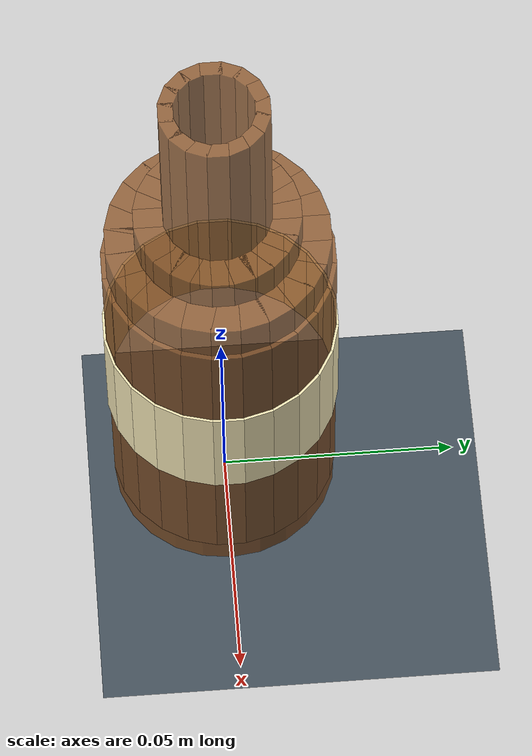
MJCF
<mujoco model="duet2_bottle">
  <compiler angle="radian" autolimits="true" />
  <option timestep=".005" integrator="implicitfast" cone="elliptic" iterations="30" />
  <asset>
    <material name="base_motor_holder_so101_v1_material" rgba="1 0.82 0.12 1" />
    <material name="base_so101_v2_material" rgba="1 0.82 0.12 1" />
    <material name="sts3215_03a_v1_material" rgba="0.1 0.1 0.1 1" />
    <material name="waveshare_mounting_plate_so101_v2_material" rgba="1 0.82 0.12 1" />
    <material name="motor_holder_so101_base_v1_material" rgba="1 0.82 0.12 1" />
    <material name="rotation_pitch_so101_v1_material" rgba="1 0.82 0.12 1" />
    <material name="upper_arm_so101_v1_material" rgba="1 0.82 0.12 1" />
    <material name="under_arm_so101_v1_material" rgba="1 0.82 0.12 1" />
    <material name="motor_holder_so101_wrist_v1_material" rgba="1 0.82 0.12 1" />
    <material name="sts3215_03a_no_horn_v1_material" rgba="0.1 0.1 0.1 1.0" />
    <material name="wrist_roll_pitch_so101_v2_material" rgba="1 0.82 0.12 1" />
    <material name="wrist_roll_follower_so101_v1_material" rgba="1 0.82 0.12 1" />
    <material name="moving_jaw_so101_v1_material" rgba="1 0.82 0.12 1" />
    <texture name="sky" type="skybox" builtin="gradient" rgb1="0.15 0.21 0.29" rgb2="0.04 0.07 0.12" width="512" height="3072" />
    <texture name="floor_tex" type="2d" builtin="checker" width="512" height="512" rgb1="0.18 0.22 0.28" rgb2="0.20 0.24 0.30" />
    <material name="floor_mat" texture="floor_tex" texrepeat="8 8" reflectance="0.05" />
    <material name="table_mat" rgba=".69 .53 .37 1" specular="0.25" shininess="0.3" />
    <material name="edge_mat" rgba="0.07 0.12 0.17 1" specular="0.45" />
    <material name="tube_mat" rgba="0.71 0.88 0.94 0.78" specular="0.6" shininess="0.8" />
    <material name="ceramic" rgba=".95 .95 .90 1" specular=".3" shininess=".65" />
    <material name="plate_blue" rgba=".33 .51 .76 1" specular=".35" shininess=".65" />
    <material name="plate_gold" rgba=".81 .56 .28 1" specular=".35" shininess=".65" />
    <material name="mug_teal" rgba=".06 .53 .49 1" specular=".4" shininess=".65" />
    <material name="clear_glass" rgba=".66 .87 .92 .30" specular=".75" shininess=".65" />
    <material name="glass_rim" rgba=".62 .84 .89 .8" specular=".6" shininess=".65" />
    <material name="amber_glass" rgba=".55 .32 .13 .78" specular=".6" shininess=".65" />
    <material name="bottle_label" rgba=".96 .91 .72 1" specular=".1" shininess=".65" />
    <material name="steel" rgba=".72 .78 .83 1" specular=".85" shininess=".65" />
    <material name="drawer_wood" rgba=".37 .21 .12 1" specular=".2" shininess=".65" />
    <material name="drawer_lining" rgba=".20 .28 .27 1" specular=".1" shininess=".65" />
  </asset>
  <worldbody>
    <light pos="0 -.3 2" dir="0 0 -1" />
    <geom name="inspection_floor" type="plane" size=".4 .4 .05" pos="0 0 0.0" rgba=".27 .32 .36 1" />
    <body name="bottle" pos="0 0 0.001" euler="0 0 0">
      <freejoint name="bottle_free" />
      <inertial pos="0 0 0.07" mass="0.08" diaginertia="0.00014602667 0.00014602667 3.072e-05" />
      <geom name="bottle_base" type="cylinder" size="0.024 0.007" pos="0 0 0.007" mass="0" friction="0.8 0.005 0.0001" condim="4" solref=".012 1" material="amber_glass" />
      <geom name="bottle_wall_0" type="box" size="0.002 0.0031596599 0.0395" pos="0.022 0 0.0455" mass="0" friction="0.8 0.005 0.0001" condim="4" solref=".012 1" euler="0 0 0" material="amber_glass" />
      <geom name="bottle_wall_1" type="box" size="0.002 0.0031596599 0.0395" pos="0.021250368 0.005694019 0.0455" mass="0" friction="0.8 0.005 0.0001" condim="4" solref=".012 1" euler="0 0 0.26179939" material="amber_glass" />
      <geom name="bottle_wall_2" type="box" size="0.002 0.0031596599 0.0395" pos="0.019052559 0.011 0.0455" mass="0" friction="0.8 0.005 0.0001" condim="4" solref=".012 1" euler="0 0 0.52359878" material="amber_glass" />
      <geom name="bottle_wall_3" type="box" size="0.002 0.0031596599 0.0395" pos="0.015556349 0.015556349 0.0455" mass="0" friction="0.8 0.005 0.0001" condim="4" solref=".012 1" euler="0 0 0.78539816" material="amber_glass" />
      <geom name="bottle_wall_4" type="box" size="0.002 0.0031596599 0.0395" pos="0.011 0.019052559 0.0455" mass="0" friction="0.8 0.005 0.0001" condim="4" solref=".012 1" euler="0 0 1.0471976" material="amber_glass" />
      <geom name="bottle_wall_5" type="box" size="0.002 0.0031596599 0.0395" pos="0.005694019 0.021250368 0.0455" mass="0" friction="0.8 0.005 0.0001" condim="4" solref=".012 1" euler="0 0 1.3089969" material="amber_glass" />
      <geom name="bottle_wall_6" type="box" size="0.002 0.0031596599 0.0395" pos="1.3471115e-18 0.022 0.0455" mass="0" friction="0.8 0.005 0.0001" condim="4" solref=".012 1" euler="0 0 1.5707963" material="amber_glass" />
      <geom name="bottle_wall_7" type="box" size="0.002 0.0031596599 0.0395" pos="-0.005694019 0.021250368 0.0455" mass="0" friction="0.8 0.005 0.0001" condim="4" solref=".012 1" euler="0 0 1.8325957" material="amber_glass" />
      <geom name="bottle_wall_8" type="box" size="0.002 0.0031596599 0.0395" pos="-0.011 0.019052559 0.0455" mass="0" friction="0.8 0.005 0.0001" condim="4" solref=".012 1" euler="0 0 2.0943951" material="amber_glass" />
      <geom name="bottle_wall_9" type="box" size="0.002 0.0031596599 0.0395" pos="-0.015556349 0.015556349 0.0455" mass="0" friction="0.8 0.005 0.0001" condim="4" solref=".012 1" euler="0 0 2.3561945" material="amber_glass" />
      <geom name="bottle_wall_10" type="box" size="0.002 0.0031596599 0.0395" pos="-0.019052559 0.011 0.0455" mass="0" friction="0.8 0.005 0.0001" condim="4" solref=".012 1" euler="0 0 2.6179939" material="amber_glass" />
      <geom name="bottle_wall_11" type="box" size="0.002 0.0031596599 0.0395" pos="-0.021250368 0.005694019 0.0455" mass="0" friction="0.8 0.005 0.0001" condim="4" solref=".012 1" euler="0 0 2.8797933" material="amber_glass" />
      <geom name="bottle_wall_12" type="box" size="0.002 0.0031596599 0.0395" pos="-0.022 2.694223e-18 0.0455" mass="0" friction="0.8 0.005 0.0001" condim="4" solref=".012 1" euler="0 0 3.1415927" material="amber_glass" />
      <geom name="bottle_wall_13" type="box" size="0.002 0.0031596599 0.0395" pos="-0.021250368 -0.005694019 0.0455" mass="0" friction="0.8 0.005 0.0001" condim="4" solref=".012 1" euler="0 0 3.403392" material="amber_glass" />
      <geom name="bottle_wall_14" type="box" size="0.002 0.0031596599 0.0395" pos="-0.019052559 -0.011 0.0455" mass="0" friction="0.8 0.005 0.0001" condim="4" solref=".012 1" euler="0 0 3.6651914" material="amber_glass" />
      <geom name="bottle_wall_15" type="box" size="0.002 0.0031596599 0.0395" pos="-0.015556349 -0.015556349 0.0455" mass="0" friction="0.8 0.005 0.0001" condim="4" solref=".012 1" euler="0 0 3.9269908" material="amber_glass" />
      <geom name="bottle_wall_16" type="box" size="0.002 0.0031596599 0.0395" pos="-0.011 -0.019052559 0.0455" mass="0" friction="0.8 0.005 0.0001" condim="4" solref=".012 1" euler="0 0 4.1887902" material="amber_glass" />
      <geom name="bottle_wall_17" type="box" size="0.002 0.0031596599 0.0395" pos="-0.005694019 -0.021250368 0.0455" mass="0" friction="0.8 0.005 0.0001" condim="4" solref=".012 1" euler="0 0 4.4505896" material="amber_glass" />
      <geom name="bottle_wall_18" type="box" size="0.002 0.0031596599 0.0395" pos="-4.0413344e-18 -0.022 0.0455" mass="0" friction="0.8 0.005 0.0001" condim="4" solref=".012 1" euler="0 0 4.712389" material="amber_glass" />
      <geom name="bottle_wall_19" type="box" size="0.002 0.0031596599 0.0395" pos="0.005694019 -0.021250368 0.0455" mass="0" friction="0.8 0.005 0.0001" condim="4" solref=".012 1" euler="0 0 4.9741884" material="amber_glass" />
      <geom name="bottle_wall_20" type="box" size="0.002 0.0031596599 0.0395" pos="0.011 -0.019052559 0.0455" mass="0" friction="0.8 0.005 0.0001" condim="4" solref=".012 1" euler="0 0 5.2359878" material="amber_glass" />
      <geom name="bottle_wall_21" type="box" size="0.002 0.0031596599 0.0395" pos="0.015556349 -0.015556349 0.0455" mass="0" friction="0.8 0.005 0.0001" condim="4" solref=".012 1" euler="0 0 5.4977871" material="amber_glass" />
      <geom name="bottle_wall_22" type="box" size="0.002 0.0031596599 0.0395" pos="0.019052559 -0.011 0.0455" mass="0" friction="0.8 0.005 0.0001" condim="4" solref=".012 1" euler="0 0 5.7595865" material="amber_glass" />
      <geom name="bottle_wall_23" type="box" size="0.002 0.0031596599 0.0395" pos="0.021250368 -0.005694019 0.0455" mass="0" friction="0.8 0.005 0.0001" condim="4" solref=".012 1" euler="0 0 6.0213859" material="amber_glass" />
      <geom name="bottle_shoulder_lower_0" type="box" size="0.004 0.0030280074 0.005" pos="0.019 0 0.089" mass="0" friction="0.8 0.005 0.0001" condim="4" solref=".012 1" euler="0 0 0" material="amber_glass" />
      <geom name="bottle_shoulder_lower_1" type="box" size="0.004 0.0030280074 0.005" pos="0.018352591 0.0049175619 0.089" mass="0" friction="0.8 0.005 0.0001" condim="4" solref=".012 1" euler="0 0 0.26179939" material="amber_glass" />
      <geom name="bottle_shoulder_lower_2" type="box" size="0.004 0.0030280074 0.005" pos="0.016454483 0.0095 0.089" mass="0" friction="0.8 0.005 0.0001" condim="4" solref=".012 1" euler="0 0 0.52359878" material="amber_glass" />
      <geom name="bottle_shoulder_lower_3" type="box" size="0.004 0.0030280074 0.005" pos="0.013435029 0.013435029 0.089" mass="0" friction="0.8 0.005 0.0001" condim="4" solref=".012 1" euler="0 0 0.78539816" material="amber_glass" />
      <geom name="bottle_shoulder_lower_4" type="box" size="0.004 0.0030280074 0.005" pos="0.0095 0.016454483 0.089" mass="0" friction="0.8 0.005 0.0001" condim="4" solref=".012 1" euler="0 0 1.0471976" material="amber_glass" />
      <geom name="bottle_shoulder_lower_5" type="box" size="0.004 0.0030280074 0.005" pos="0.0049175619 0.018352591 0.089" mass="0" friction="0.8 0.005 0.0001" condim="4" solref=".012 1" euler="0 0 1.3089969" material="amber_glass" />
      <geom name="bottle_shoulder_lower_6" type="box" size="0.004 0.0030280074 0.005" pos="1.1634145e-18 0.019 0.089" mass="0" friction="0.8 0.005 0.0001" condim="4" solref=".012 1" euler="0 0 1.5707963" material="amber_glass" />
      <geom name="bottle_shoulder_lower_7" type="box" size="0.004 0.0030280074 0.005" pos="-0.0049175619 0.018352591 0.089" mass="0" friction="0.8 0.005 0.0001" condim="4" solref=".012 1" euler="0 0 1.8325957" material="amber_glass" />
      <geom name="bottle_shoulder_lower_8" type="box" size="0.004 0.0030280074 0.005" pos="-0.0095 0.016454483 0.089" mass="0" friction="0.8 0.005 0.0001" condim="4" solref=".012 1" euler="0 0 2.0943951" material="amber_glass" />
      <geom name="bottle_shoulder_lower_9" type="box" size="0.004 0.0030280074 0.005" pos="-0.013435029 0.013435029 0.089" mass="0" friction="0.8 0.005 0.0001" condim="4" solref=".012 1" euler="0 0 2.3561945" material="amber_glass" />
      <geom name="bottle_shoulder_lower_10" type="box" size="0.004 0.0030280074 0.005" pos="-0.016454483 0.0095 0.089" mass="0" friction="0.8 0.005 0.0001" condim="4" solref=".012 1" euler="0 0 2.6179939" material="amber_glass" />
      <geom name="bottle_shoulder_lower_11" type="box" size="0.004 0.0030280074 0.005" pos="-0.018352591 0.0049175619 0.089" mass="0" friction="0.8 0.005 0.0001" condim="4" solref=".012 1" euler="0 0 2.8797933" material="amber_glass" />
      <geom name="bottle_shoulder_lower_12" type="box" size="0.004 0.0030280074 0.005" pos="-0.019 2.3268289e-18 0.089" mass="0" friction="0.8 0.005 0.0001" condim="4" solref=".012 1" euler="0 0 3.1415927" material="amber_glass" />
      <geom name="bottle_shoulder_lower_13" type="box" size="0.004 0.0030280074 0.005" pos="-0.018352591 -0.0049175619 0.089" mass="0" friction="0.8 0.005 0.0001" condim="4" solref=".012 1" euler="0 0 3.403392" material="amber_glass" />
      <geom name="bottle_shoulder_lower_14" type="box" size="0.004 0.0030280074 0.005" pos="-0.016454483 -0.0095 0.089" mass="0" friction="0.8 0.005 0.0001" condim="4" solref=".012 1" euler="0 0 3.6651914" material="amber_glass" />
      <geom name="bottle_shoulder_lower_15" type="box" size="0.004 0.0030280074 0.005" pos="-0.013435029 -0.013435029 0.089" mass="0" friction="0.8 0.005 0.0001" condim="4" solref=".012 1" euler="0 0 3.9269908" material="amber_glass" />
      <geom name="bottle_shoulder_lower_16" type="box" size="0.004 0.0030280074 0.005" pos="-0.0095 -0.016454483 0.089" mass="0" friction="0.8 0.005 0.0001" condim="4" solref=".012 1" euler="0 0 4.1887902" material="amber_glass" />
      <geom name="bottle_shoulder_lower_17" type="box" size="0.004 0.0030280074 0.005" pos="-0.0049175619 -0.018352591 0.089" mass="0" friction="0.8 0.005 0.0001" condim="4" solref=".012 1" euler="0 0 4.4505896" material="amber_glass" />
      <geom name="bottle_shoulder_lower_18" type="box" size="0.004 0.0030280074 0.005" pos="-3.4902434e-18 -0.019 0.089" mass="0" friction="0.8 0.005 0.0001" condim="4" solref=".012 1" euler="0 0 4.712389" material="amber_glass" />
      <geom name="bottle_shoulder_lower_19" type="box" size="0.004 0.0030280074 0.005" pos="0.0049175619 -0.018352591 0.089" mass="0" friction="0.8 0.005 0.0001" condim="4" solref=".012 1" euler="0 0 4.9741884" material="amber_glass" />
      <geom name="bottle_shoulder_lower_20" type="box" size="0.004 0.0030280074 0.005" pos="0.0095 -0.016454483 0.089" mass="0" friction="0.8 0.005 0.0001" condim="4" solref=".012 1" euler="0 0 5.2359878" material="amber_glass" />
      <geom name="bottle_shoulder_lower_21" type="box" size="0.004 0.0030280074 0.005" pos="0.013435029 -0.013435029 0.089" mass="0" friction="0.8 0.005 0.0001" condim="4" solref=".012 1" euler="0 0 5.4977871" material="amber_glass" />
      <geom name="bottle_shoulder_lower_22" type="box" size="0.004 0.0030280074 0.005" pos="0.016454483 -0.0095 0.089" mass="0" friction="0.8 0.005 0.0001" condim="4" solref=".012 1" euler="0 0 5.7595865" material="amber_glass" />
      <geom name="bottle_shoulder_lower_23" type="box" size="0.004 0.0030280074 0.005" pos="0.018352591 -0.0049175619 0.089" mass="0" friction="0.8 0.005 0.0001" condim="4" solref=".012 1" euler="0 0 6.0213859" material="amber_glass" />
      <geom name="bottle_shoulder_upper_0" type="box" size="0.003 0.0022380925 0.005" pos="0.014 0 0.097" mass="0" friction="0.8 0.005 0.0001" condim="4" solref=".012 1" euler="0 0 0" material="amber_glass" />
      <geom name="bottle_shoulder_upper_1" type="box" size="0.003 0.0022380925 0.005" pos="0.013522962 0.0036234666 0.097" mass="0" friction="0.8 0.005 0.0001" condim="4" solref=".012 1" euler="0 0 0.26179939" material="amber_glass" />
      <geom name="bottle_shoulder_upper_2" type="box" size="0.003 0.0022380925 0.005" pos="0.012124356 0.007 0.097" mass="0" friction="0.8 0.005 0.0001" condim="4" solref=".012 1" euler="0 0 0.52359878" material="amber_glass" />
      <geom name="bottle_shoulder_upper_3" type="box" size="0.003 0.0022380925 0.005" pos="0.0098994949 0.0098994949 0.097" mass="0" friction="0.8 0.005 0.0001" condim="4" solref=".012 1" euler="0 0 0.78539816" material="amber_glass" />
      <geom name="bottle_shoulder_upper_4" type="box" size="0.003 0.0022380925 0.005" pos="0.007 0.012124356 0.097" mass="0" friction="0.8 0.005 0.0001" condim="4" solref=".012 1" euler="0 0 1.0471976" material="amber_glass" />
      <geom name="bottle_shoulder_upper_5" type="box" size="0.003 0.0022380925 0.005" pos="0.0036234666 0.013522962 0.097" mass="0" friction="0.8 0.005 0.0001" condim="4" solref=".012 1" euler="0 0 1.3089969" material="amber_glass" />
      <geom name="bottle_shoulder_upper_6" type="box" size="0.003 0.0022380925 0.005" pos="8.5725276e-19 0.014 0.097" mass="0" friction="0.8 0.005 0.0001" condim="4" solref=".012 1" euler="0 0 1.5707963" material="amber_glass" />
      <geom name="bottle_shoulder_upper_7" type="box" size="0.003 0.0022380925 0.005" pos="-0.0036234666 0.013522962 0.097" mass="0" friction="0.8 0.005 0.0001" condim="4" solref=".012 1" euler="0 0 1.8325957" material="amber_glass" />
      <geom name="bottle_shoulder_upper_8" type="box" size="0.003 0.0022380925 0.005" pos="-0.007 0.012124356 0.097" mass="0" friction="0.8 0.005 0.0001" condim="4" solref=".012 1" euler="0 0 2.0943951" material="amber_glass" />
      <geom name="bottle_shoulder_upper_9" type="box" size="0.003 0.0022380925 0.005" pos="-0.0098994949 0.0098994949 0.097" mass="0" friction="0.8 0.005 0.0001" condim="4" solref=".012 1" euler="0 0 2.3561945" material="amber_glass" />
      <geom name="bottle_shoulder_upper_10" type="box" size="0.003 0.0022380925 0.005" pos="-0.012124356 0.007 0.097" mass="0" friction="0.8 0.005 0.0001" condim="4" solref=".012 1" euler="0 0 2.6179939" material="amber_glass" />
      <geom name="bottle_shoulder_upper_11" type="box" size="0.003 0.0022380925 0.005" pos="-0.013522962 0.0036234666 0.097" mass="0" friction="0.8 0.005 0.0001" condim="4" solref=".012 1" euler="0 0 2.8797933" material="amber_glass" />
      <geom name="bottle_shoulder_upper_12" type="box" size="0.003 0.0022380925 0.005" pos="-0.014 1.7145055e-18 0.097" mass="0" friction="0.8 0.005 0.0001" condim="4" solref=".012 1" euler="0 0 3.1415927" material="amber_glass" />
      <geom name="bottle_shoulder_upper_13" type="box" size="0.003 0.0022380925 0.005" pos="-0.013522962 -0.0036234666 0.097" mass="0" friction="0.8 0.005 0.0001" condim="4" solref=".012 1" euler="0 0 3.403392" material="amber_glass" />
      <geom name="bottle_shoulder_upper_14" type="box" size="0.003 0.0022380925 0.005" pos="-0.012124356 -0.007 0.097" mass="0" friction="0.8 0.005 0.0001" condim="4" solref=".012 1" euler="0 0 3.6651914" material="amber_glass" />
      <geom name="bottle_shoulder_upper_15" type="box" size="0.003 0.0022380925 0.005" pos="-0.0098994949 -0.0098994949 0.097" mass="0" friction="0.8 0.005 0.0001" condim="4" solref=".012 1" euler="0 0 3.9269908" material="amber_glass" />
      <geom name="bottle_shoulder_upper_16" type="box" size="0.003 0.0022380925 0.005" pos="-0.007 -0.012124356 0.097" mass="0" friction="0.8 0.005 0.0001" condim="4" solref=".012 1" euler="0 0 4.1887902" material="amber_glass" />
      <geom name="bottle_shoulder_upper_17" type="box" size="0.003 0.0022380925 0.005" pos="-0.0036234666 -0.013522962 0.097" mass="0" friction="0.8 0.005 0.0001" condim="4" solref=".012 1" euler="0 0 4.4505896" material="amber_glass" />
      <geom name="bottle_shoulder_upper_18" type="box" size="0.003 0.0022380925 0.005" pos="-2.5717583e-18 -0.014 0.097" mass="0" friction="0.8 0.005 0.0001" condim="4" solref=".012 1" euler="0 0 4.712389" material="amber_glass" />
      <geom name="bottle_shoulder_upper_19" type="box" size="0.003 0.0022380925 0.005" pos="0.0036234666 -0.013522962 0.097" mass="0" friction="0.8 0.005 0.0001" condim="4" solref=".012 1" euler="0 0 4.9741884" material="amber_glass" />
      <geom name="bottle_shoulder_upper_20" type="box" size="0.003 0.0022380925 0.005" pos="0.007 -0.012124356 0.097" mass="0" friction="0.8 0.005 0.0001" condim="4" solref=".012 1" euler="0 0 5.2359878" material="amber_glass" />
      <geom name="bottle_shoulder_upper_21" type="box" size="0.003 0.0022380925 0.005" pos="0.0098994949 -0.0098994949 0.097" mass="0" friction="0.8 0.005 0.0001" condim="4" solref=".012 1" euler="0 0 5.4977871" material="amber_glass" />
      <geom name="bottle_shoulder_upper_22" type="box" size="0.003 0.0022380925 0.005" pos="0.012124356 -0.007 0.097" mass="0" friction="0.8 0.005 0.0001" condim="4" solref=".012 1" euler="0 0 5.7595865" material="amber_glass" />
      <geom name="bottle_shoulder_upper_23" type="box" size="0.003 0.0022380925 0.005" pos="0.013522962 -0.0036234666 0.097" mass="0" friction="0.8 0.005 0.0001" condim="4" solref=".012 1" euler="0 0 6.0213859" material="amber_glass" />
      <geom name="bottle_neck_0" type="box" size="0.0015 0.002188036 0.02" pos="0.0095 0 0.12" mass="0" friction="0.8 0.005 0.0001" condim="4" solref=".012 1" euler="0 0 0" material="amber_glass" />
      <geom name="bottle_neck_1" type="box" size="0.0015 0.002188036 0.02" pos="0.0087768556 0.0036354926 0.12" mass="0" friction="0.8 0.005 0.0001" condim="4" solref=".012 1" euler="0 0 0.39269908" material="amber_glass" />
      <geom name="bottle_neck_2" type="box" size="0.0015 0.002188036 0.02" pos="0.0067175144 0.0067175144 0.12" mass="0" friction="0.8 0.005 0.0001" condim="4" solref=".012 1" euler="0 0 0.78539816" material="amber_glass" />
      <geom name="bottle_neck_3" type="box" size="0.0015 0.002188036 0.02" pos="0.0036354926 0.0087768556 0.12" mass="0" friction="0.8 0.005 0.0001" condim="4" solref=".012 1" euler="0 0 1.1780972" material="amber_glass" />
      <geom name="bottle_neck_4" type="box" size="0.0015 0.002188036 0.02" pos="5.8170723e-19 0.0095 0.12" mass="0" friction="0.8 0.005 0.0001" condim="4" solref=".012 1" euler="0 0 1.5707963" material="amber_glass" />
      <geom name="bottle_neck_5" type="box" size="0.0015 0.002188036 0.02" pos="-0.0036354926 0.0087768556 0.12" mass="0" friction="0.8 0.005 0.0001" condim="4" solref=".012 1" euler="0 0 1.9634954" material="amber_glass" />
      <geom name="bottle_neck_6" type="box" size="0.0015 0.002188036 0.02" pos="-0.0067175144 0.0067175144 0.12" mass="0" friction="0.8 0.005 0.0001" condim="4" solref=".012 1" euler="0 0 2.3561945" material="amber_glass" />
      <geom name="bottle_neck_7" type="box" size="0.0015 0.002188036 0.02" pos="-0.0087768556 0.0036354926 0.12" mass="0" friction="0.8 0.005 0.0001" condim="4" solref=".012 1" euler="0 0 2.7488936" material="amber_glass" />
      <geom name="bottle_neck_8" type="box" size="0.0015 0.002188036 0.02" pos="-0.0095 1.1634145e-18 0.12" mass="0" friction="0.8 0.005 0.0001" condim="4" solref=".012 1" euler="0 0 3.1415927" material="amber_glass" />
      <geom name="bottle_neck_9" type="box" size="0.0015 0.002188036 0.02" pos="-0.0087768556 -0.0036354926 0.12" mass="0" friction="0.8 0.005 0.0001" condim="4" solref=".012 1" euler="0 0 3.5342917" material="amber_glass" />
      <geom name="bottle_neck_10" type="box" size="0.0015 0.002188036 0.02" pos="-0.0067175144 -0.0067175144 0.12" mass="0" friction="0.8 0.005 0.0001" condim="4" solref=".012 1" euler="0 0 3.9269908" material="amber_glass" />
      <geom name="bottle_neck_11" type="box" size="0.0015 0.002188036 0.02" pos="-0.0036354926 -0.0087768556 0.12" mass="0" friction="0.8 0.005 0.0001" condim="4" solref=".012 1" euler="0 0 4.3196899" material="amber_glass" />
      <geom name="bottle_neck_12" type="box" size="0.0015 0.002188036 0.02" pos="-1.7451217e-18 -0.0095 0.12" mass="0" friction="0.8 0.005 0.0001" condim="4" solref=".012 1" euler="0 0 4.712389" material="amber_glass" />
      <geom name="bottle_neck_13" type="box" size="0.0015 0.002188036 0.02" pos="0.0036354926 -0.0087768556 0.12" mass="0" friction="0.8 0.005 0.0001" condim="4" solref=".012 1" euler="0 0 5.1050881" material="amber_glass" />
      <geom name="bottle_neck_14" type="box" size="0.0015 0.002188036 0.02" pos="0.0067175144 -0.0067175144 0.12" mass="0" friction="0.8 0.005 0.0001" condim="4" solref=".012 1" euler="0 0 5.4977871" material="amber_glass" />
      <geom name="bottle_neck_15" type="box" size="0.0015 0.002188036 0.02" pos="0.0087768556 -0.0036354926 0.12" mass="0" friction="0.8 0.005 0.0001" condim="4" solref=".012 1" euler="0 0 5.8904862" material="amber_glass" />
      <geom name="bottle_label_0" type="box" size="0.0003 0.0032254862 0.0135" pos="0.0242 0 0.047" mass="0" friction="0.8 0.005 0.0001" condim="4" solref=".012 1" euler="0 0 0" material="bottle_label" contype="0" conaffinity="0" />
      <geom name="bottle_label_1" type="box" size="0.0003 0.0032254862 0.0135" pos="0.023375405 0.0062634209 0.047" mass="0" friction="0.8 0.005 0.0001" condim="4" solref=".012 1" euler="0 0 0.26179939" material="bottle_label" contype="0" conaffinity="0" />
      <geom name="bottle_label_2" type="box" size="0.0003 0.0032254862 0.0135" pos="0.020957815 0.0121 0.047" mass="0" friction="0.8 0.005 0.0001" condim="4" solref=".012 1" euler="0 0 0.52359878" material="bottle_label" contype="0" conaffinity="0" />
      <geom name="bottle_label_3" type="box" size="0.0003 0.0032254862 0.0135" pos="0.017111984 0.017111984 0.047" mass="0" friction="0.8 0.005 0.0001" condim="4" solref=".012 1" euler="0 0 0.78539816" material="bottle_label" contype="0" conaffinity="0" />
      <geom name="bottle_label_4" type="box" size="0.0003 0.0032254862 0.0135" pos="0.0121 0.020957815 0.047" mass="0" friction="0.8 0.005 0.0001" condim="4" solref=".012 1" euler="0 0 1.0471976" material="bottle_label" contype="0" conaffinity="0" />
      <geom name="bottle_label_5" type="box" size="0.0003 0.0032254862 0.0135" pos="0.0062634209 0.023375405 0.047" mass="0" friction="0.8 0.005 0.0001" condim="4" solref=".012 1" euler="0 0 1.3089969" material="bottle_label" contype="0" conaffinity="0" />
      <geom name="bottle_label_6" type="box" size="0.0003 0.0032254862 0.0135" pos="1.4818226e-18 0.0242 0.047" mass="0" friction="0.8 0.005 0.0001" condim="4" solref=".012 1" euler="0 0 1.5707963" material="bottle_label" contype="0" conaffinity="0" />
      <geom name="bottle_label_7" type="box" size="0.0003 0.0032254862 0.0135" pos="-0.0062634209 0.023375405 0.047" mass="0" friction="0.8 0.005 0.0001" condim="4" solref=".012 1" euler="0 0 1.8325957" material="bottle_label" contype="0" conaffinity="0" />
      <geom name="bottle_label_8" type="box" size="0.0003 0.0032254862 0.0135" pos="-0.0121 0.020957815 0.047" mass="0" friction="0.8 0.005 0.0001" condim="4" solref=".012 1" euler="0 0 2.0943951" material="bottle_label" contype="0" conaffinity="0" />
      <geom name="bottle_label_9" type="box" size="0.0003 0.0032254862 0.0135" pos="-0.017111984 0.017111984 0.047" mass="0" friction="0.8 0.005 0.0001" condim="4" solref=".012 1" euler="0 0 2.3561945" material="bottle_label" contype="0" conaffinity="0" />
      <geom name="bottle_label_10" type="box" size="0.0003 0.0032254862 0.0135" pos="-0.020957815 0.0121 0.047" mass="0" friction="0.8 0.005 0.0001" condim="4" solref=".012 1" euler="0 0 2.6179939" material="bottle_label" contype="0" conaffinity="0" />
      <geom name="bottle_label_11" type="box" size="0.0003 0.0032254862 0.0135" pos="-0.023375405 0.0062634209 0.047" mass="0" friction="0.8 0.005 0.0001" condim="4" solref=".012 1" euler="0 0 2.8797933" material="bottle_label" contype="0" conaffinity="0" />
      <geom name="bottle_label_12" type="box" size="0.0003 0.0032254862 0.0135" pos="-0.0242 2.9636453e-18 0.047" mass="0" friction="0.8 0.005 0.0001" condim="4" solref=".012 1" euler="0 0 3.1415927" material="bottle_label" contype="0" conaffinity="0" />
      <geom name="bottle_label_13" type="box" size="0.0003 0.0032254862 0.0135" pos="-0.023375405 -0.0062634209 0.047" mass="0" friction="0.8 0.005 0.0001" condim="4" solref=".012 1" euler="0 0 3.403392" material="bottle_label" contype="0" conaffinity="0" />
      <geom name="bottle_label_14" type="box" size="0.0003 0.0032254862 0.0135" pos="-0.020957815 -0.0121 0.047" mass="0" friction="0.8 0.005 0.0001" condim="4" solref=".012 1" euler="0 0 3.6651914" material="bottle_label" contype="0" conaffinity="0" />
      <geom name="bottle_label_15" type="box" size="0.0003 0.0032254862 0.0135" pos="-0.017111984 -0.017111984 0.047" mass="0" friction="0.8 0.005 0.0001" condim="4" solref=".012 1" euler="0 0 3.9269908" material="bottle_label" contype="0" conaffinity="0" />
      <geom name="bottle_label_16" type="box" size="0.0003 0.0032254862 0.0135" pos="-0.0121 -0.020957815 0.047" mass="0" friction="0.8 0.005 0.0001" condim="4" solref=".012 1" euler="0 0 4.1887902" material="bottle_label" contype="0" conaffinity="0" />
      <geom name="bottle_label_17" type="box" size="0.0003 0.0032254862 0.0135" pos="-0.0062634209 -0.023375405 0.047" mass="0" friction="0.8 0.005 0.0001" condim="4" solref=".012 1" euler="0 0 4.4505896" material="bottle_label" contype="0" conaffinity="0" />
      <geom name="bottle_label_18" type="box" size="0.0003 0.0032254862 0.0135" pos="-4.4454679e-18 -0.0242 0.047" mass="0" friction="0.8 0.005 0.0001" condim="4" solref=".012 1" euler="0 0 4.712389" material="bottle_label" contype="0" conaffinity="0" />
      <geom name="bottle_label_19" type="box" size="0.0003 0.0032254862 0.0135" pos="0.0062634209 -0.023375405 0.047" mass="0" friction="0.8 0.005 0.0001" condim="4" solref=".012 1" euler="0 0 4.9741884" material="bottle_label" contype="0" conaffinity="0" />
      <geom name="bottle_label_20" type="box" size="0.0003 0.0032254862 0.0135" pos="0.0121 -0.020957815 0.047" mass="0" friction="0.8 0.005 0.0001" condim="4" solref=".012 1" euler="0 0 5.2359878" material="bottle_label" contype="0" conaffinity="0" />
      <geom name="bottle_label_21" type="box" size="0.0003 0.0032254862 0.0135" pos="0.017111984 -0.017111984 0.047" mass="0" friction="0.8 0.005 0.0001" condim="4" solref=".012 1" euler="0 0 5.4977871" material="bottle_label" contype="0" conaffinity="0" />
      <geom name="bottle_label_22" type="box" size="0.0003 0.0032254862 0.0135" pos="0.020957815 -0.0121 0.047" mass="0" friction="0.8 0.005 0.0001" condim="4" solref=".012 1" euler="0 0 5.7595865" material="bottle_label" contype="0" conaffinity="0" />
      <geom name="bottle_label_23" type="box" size="0.0003 0.0032254862 0.0135" pos="0.023375405 -0.0062634209 0.047" mass="0" friction="0.8 0.005 0.0001" condim="4" solref=".012 1" euler="0 0 6.0213859" material="bottle_label" contype="0" conaffinity="0" />
      <site name="bottle_grasp" pos="0 0 0.128" size=".002" group="4" rgba="0 1 0 1" />
    </body>
  </worldbody>
</mujoco>
